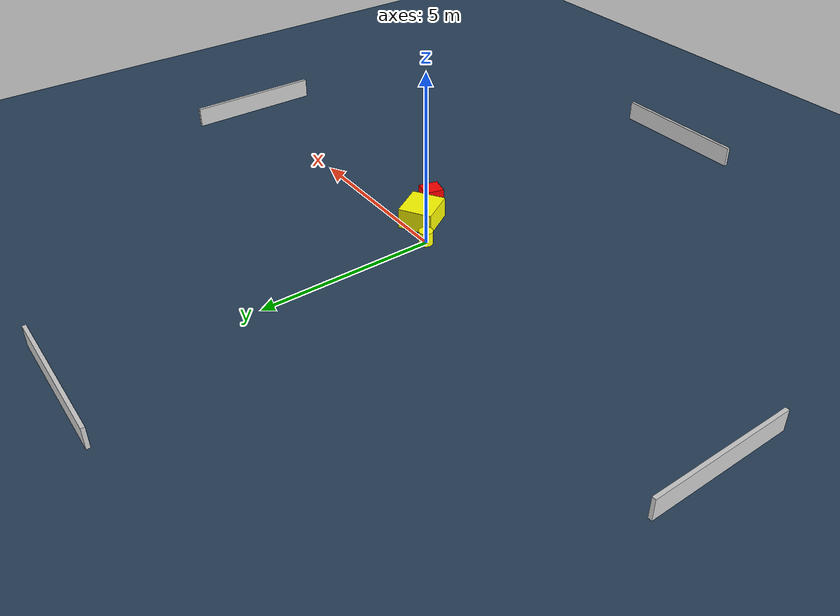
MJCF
<?xml version="1.0" ?>
<mujoco model="generated_environment">
  <option timestep="0.01" integrator="RK4" cone="elliptic"/>
  <default>
    <geom density="1"/>
  </default>
  <asset>
    <texture builtin="gradient" height="3072" name="skybox" rgb1="0.3 0.5 0.7" rgb2="0 0 0" type="skybox" width="512"/>
    <texture builtin="checker" height="300" name="groundplane" rgb1="0.2 0.3 0.4" rgb2="0.1 0.2 0.3" type="2d" width="300"/>
    <material name="groundplane" reflectance="0.2" texrepeat="5 5" texture="groundplane"/>
  </asset>
  <worldbody>
    <light dir="0 0 -1" directional="true" pos="0 0 1.5"/>
    <geom condim="3" friction="0.5 0.005 0.001" material="groundplane" name="floor" pos="0 0 0" size="0 0 0.05" type="plane"/>
    <body name="walls">
      <geom name="wall_1" condim="4" pos="-10.0 0.0 0.3" rgba="0.800000011920929 0.800000011920929 0.800000011920929 1.0" size="0.05 2.0 0.3" type="box"/>
      <geom name="wall_2" condim="4" pos="10.0 0.0 0.3" rgba="0.800000011920929 0.800000011920929 0.800000011920929 1.0" size="0.05 2.0 0.3" type="box"/>
      <geom name="wall_3" condim="4" pos="0.0 -10.0 0.3" rgba="0.800000011920929 0.800000011920929 0.800000011920929 1.0" size="2.0 0.05 0.3" type="box"/>
      <geom name="wall_4" condim="4" pos="0.0 10.0 0.3" rgba="0.800000011920929 0.800000011920929 0.800000011920929 1.0" size="2.0 0.05 0.3" type="box"/>
    </body>
    <body name="robot">
      <joint name="joint_x" type="slide" pos="0 0 0" axis="1 0 0"/>
      <joint name="joint_y" type="slide" pos="0 0 0" axis="0 1 0"/>
      <geom name="robot" type="cylinder" pos="0.0 0.0 0.2" size="0.2 0.2 0.0" mass="5.0" friction="1.0 0.005 0.0001" condim="4" rgba="1.0 1.0 0.0 1.0"/>
    </body>
    <body name="obstacle_1_movable">
      <geom name="obstacle_1_movable" condim="4" pos="0.9225928791214528 -0.5295615494638939 0.3" euler="0 0 31.649610039754176" friction="0.0 0.005 0.001" rgba="1.0 1.0 0.0 1.0" size="0.48428413979864743 0.5277873443767347 0.3" type="box" mass="0.1"/>
      <joint type="free"/>
    </body>
    <body name="obstacle_2_static">
      <geom name="obstacle_2_static" condim="4" pos="1.4745767931903138 -1.2544530659545827 0.3" euler="0 0 75.47913200561487" friction="0.0 0.005 0.001" rgba="1.0 0.0 0.0 1.0" size="0.28095768904379403 0.25055739346243144 0.3" type="box"/>
    </body>
  </worldbody>
  <actuator>
    <motor name="actuator_x" joint="joint_x" gear="1" ctrlrange="-1 1"/>
    <motor name="actuator_y" joint="joint_y" gear="1" ctrlrange="-1 1"/>
  </actuator>
</mujoco>
